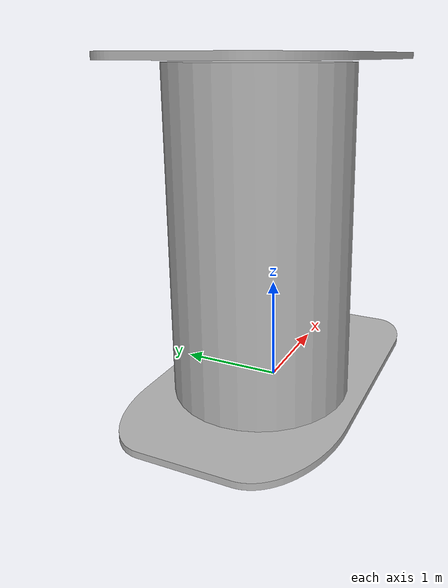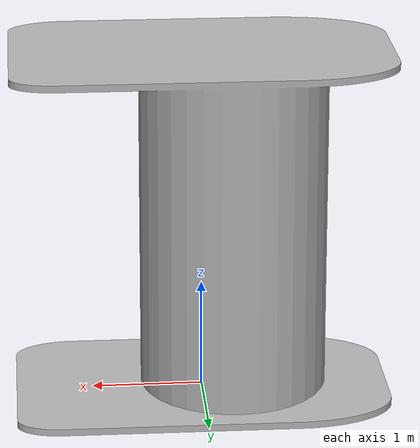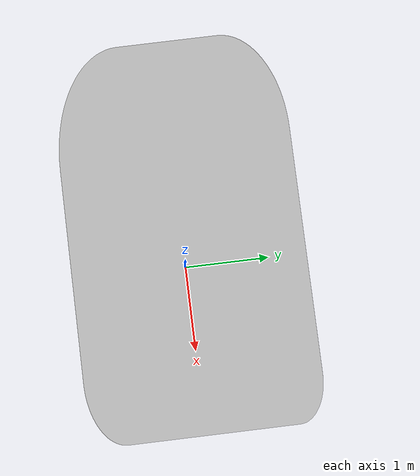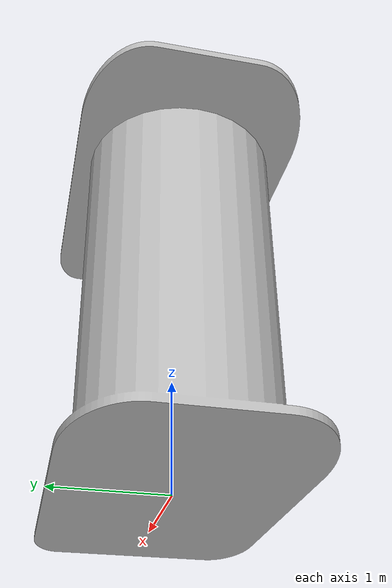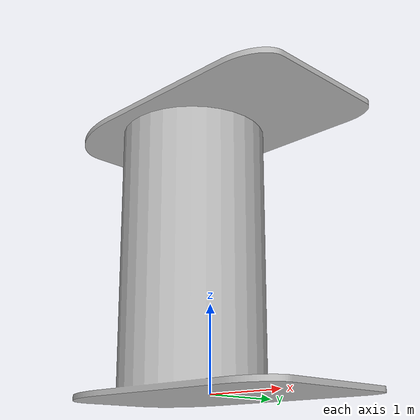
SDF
<?xml version="1.0" ?>
<sdf version="1.6">
  <model name="stand">
    <link name="link">
      <inertial>
        <mass>2</mass>
        <inertia>
          <ixx>0.277</ixx>
          <ixy>0</ixy>
          <ixz>0</ixz>
          <iyy>0.452</iyy>
          <iyz>0</iyz>
          <izz>0.268</izz>
        </inertia>
      </inertial>
      <visual name="visual">
	    <geometry>
          <mesh>
            <uri>model://stand/meshes/stand.DAE</uri>
          </mesh>
        </geometry>
      <meta> <layer> 1 </layer></meta>
</visual>
    </link>
<static>1</static>
  </model>
</sdf>
